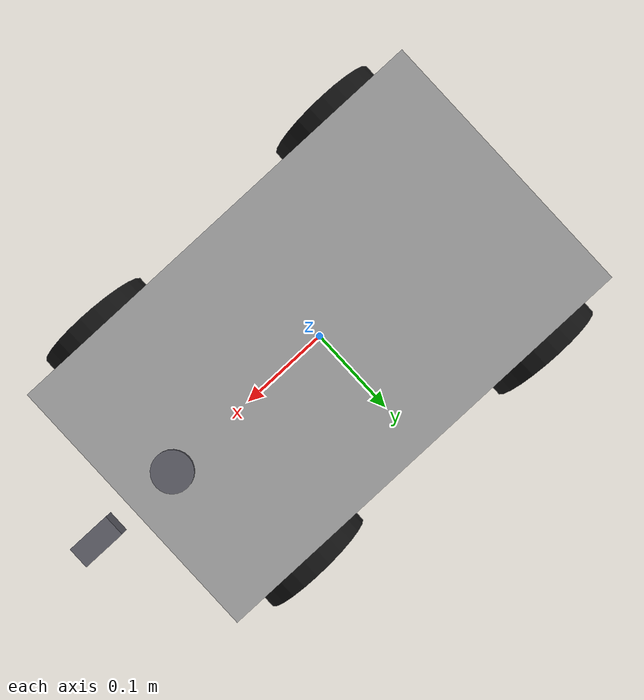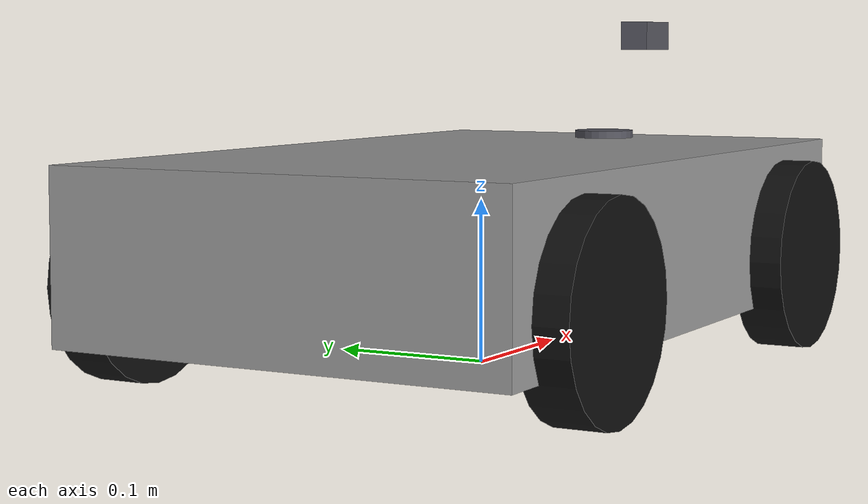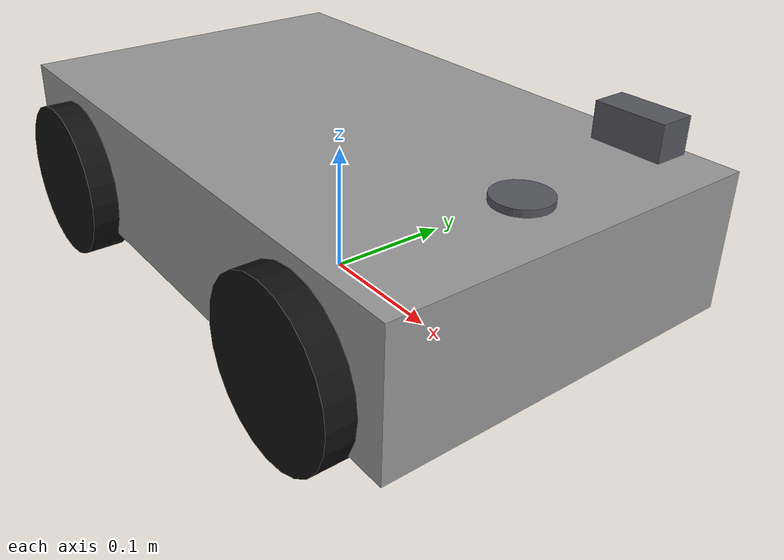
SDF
<?xml version="1.0" ?>
<!-- Generated from rc_car.urdf.xacro sha1=0ac1036ff9e41bfd897f2697a799496b39414fe6; sensors and plugins removed. -->
<sdf version="1.11">
  <model name="rc_car">
    <link name="base_link">
      <inertial>
        <pose>0.0060634920634920651 0 0.082412698412698424 0 0 0</pose>
        <mass>3.149999999999999</mass>
        <inertia>
          <ixx>0.023159663492063491</ixx>
          <ixy>0</ixy>
          <ixz>-0.00187391746031746</ixz>
          <iyy>0.061550850793650802</iyy>
          <iyz>0</iyz>
          <izz>0.077861187301587323</izz>
        </inertia>
      </inertial>
      <collision name="base_link_collision">
        <pose>0 0 0.080000000000000002 0 0 0</pose>
        <geometry>
          <box>
            <size>0.46000000000000002 0.28000000000000003 0.10000000000000001</size>
          </box>
        </geometry>
        <surface>
          <contact>
            <ode>
              <kp>100000</kp>
              <kd>25</kd>
            </ode>
          </contact>
          <friction>
            <ode>
              <mu>1.3999999999999999</mu>
              <mu2>1.3500000000000001</mu2>
            </ode>
          </friction>
        </surface>
      </collision>
      <visual name="base_link_visual">
        <pose>0 0 0.080000000000000002 0 0 0</pose>
        <geometry>
          <box>
            <size>0.46000000000000002 0.28000000000000003 0.10000000000000001</size>
          </box>
        </geometry>
        <material>
          <script>
            <name>Gazebo/Grey</name>
            <uri>file://media/materials/scripts/gazebo.material</uri>
          </script>
          <diffuse>0.337500006 0.337500006 0.37500003 1</diffuse>
          <ambient>0.337500006 0.337500006 0.37500003 1</ambient>
        </material>
      </visual>
      <visual name="base_link_fixed_joint_lump__camera_link_visual_1">
        <pose>0.25 0 0.20000000000000001 0 0 0</pose>
        <geometry>
          <box>
            <size>0.040000000000000001 0.02 0.02</size>
          </box>
        </geometry>
        <material>
          <diffuse>0.337500006 0.337500006 0.37500003 1</diffuse>
          <ambient>0.337500006 0.337500006 0.37500003 1</ambient>
        </material>
      </visual>
      <visual name="base_link_fixed_joint_lump__imu_link_visual_2">
        <pose>0.02 0 0.080000000000000002 0 0 0</pose>
        <geometry>
          <box>
            <size>0.029999999999999999 0.02 0.01</size>
          </box>
        </geometry>
        <material>
          <diffuse>0.337500006 0.337500006 0.37500003 1</diffuse>
          <ambient>0.337500006 0.337500006 0.37500003 1</ambient>
        </material>
      </visual>
      <visual name="base_link_fixed_joint_lump__laser_visual_3">
        <pose>0.17999999999999999 0 0.12 0 0 0</pose>
        <geometry>
          <cylinder>
            <length>0.029999999999999999</length>
            <radius>0.02</radius>
          </cylinder>
        </geometry>
        <material>
          <diffuse>0.337500006 0.337500006 0.37500003 1</diffuse>
          <ambient>0.337500006 0.337500006 0.37500003 1</ambient>
        </material>
      </visual>
    </link>
    <joint name="front_left_wheel_steer_joint" type="revolute">
      <pose relative_to="base_link">0.14999999999999999 0.14499999999999999 0.059999999999999998 0 0 0</pose>
      <parent>base_link</parent>
      <child>front_left_wheel_steer</child>
      <axis>
        <xyz>0 0 1</xyz>
        <limit>
          <lower>-0.3141592654</lower>
          <upper>0.3141592654</upper>
          <effort>10</effort>
          <velocity>3.5</velocity>
        </limit>
        <dynamics>
          <spring_reference>0</spring_reference>
          <spring_stiffness>0</spring_stiffness>
        </dynamics>
      </axis>
    </joint>
    <link name="front_left_wheel_steer">
      <pose relative_to="front_left_wheel_steer_joint">0 0 0 0 0 0</pose>
      <inertial>
        <pose>0 0 0 0 0 0</pose>
        <mass>0.050000000000000003</mass>
        <inertia>
          <ixx>0.00020000000000000001</ixx>
          <ixy>0</ixy>
          <ixz>0</ixz>
          <iyy>0.00020000000000000001</iyy>
          <iyz>0</iyz>
          <izz>0.00020000000000000001</izz>
        </inertia>
      </inertial>
      <collision name="front_left_wheel_steer_collision">
        <pose>0 0 0 0 0 0</pose>
        <geometry>
          <cylinder>
            <length>0.040000000000000001</length>
            <radius>0.01</radius>
          </cylinder>
        </geometry>
      </collision>
      <visual name="front_left_wheel_steer_visual">
        <pose>0 0 0 0 0 0</pose>
        <geometry>
          <cylinder>
            <length>0.040000000000000001</length>
            <radius>0.01</radius>
          </cylinder>
        </geometry>
        <material>
          <diffuse>0.337500006 0.337500006 0.37500003 1</diffuse>
          <ambient>0.337500006 0.337500006 0.37500003 1</ambient>
        </material>
      </visual>
    </link>
    <joint name="front_left_wheel_joint" type="revolute">
      <pose relative_to="front_left_wheel_steer">0 0 0 1.5708 0 0</pose>
      <parent>front_left_wheel_steer</parent>
      <child>front_left_wheel</child>
      <axis>
        <xyz>0 0 -1</xyz>
        <limit>
          <lower>-inf</lower>
          <upper>inf</upper>
        </limit>
        <dynamics>
          <spring_reference>0</spring_reference>
          <spring_stiffness>0</spring_stiffness>
        </dynamics>
      </axis>
    </joint>
    <link name="front_left_wheel">
      <pose relative_to="front_left_wheel_joint">0 0 0 0 0 0</pose>
      <inertial>
        <pose>0 0 0 0 0 0</pose>
        <mass>0.25</mass>
        <inertia>
          <ixx>0.00024374999999999999</ixx>
          <ixy>0</ixy>
          <ixz>0</ixz>
          <iyy>0.00024374999999999999</iyy>
          <iyz>0</iyz>
          <izz>0.00044999999999999999</izz>
        </inertia>
      </inertial>
      <collision name="front_left_wheel_collision">
        <pose>0 0 0 0 0 0</pose>
        <geometry>
          <cylinder>
            <length>0.029999999999999999</length>
            <radius>0.059999999999999998</radius>
          </cylinder>
        </geometry>
        <surface>
          <contact>
            <ode>
              <kp>80000</kp>
              <kd>20</kd>
            </ode>
          </contact>
          <friction>
            <ode>
              <mu>1.2</mu>
              <mu2>1.2</mu2>
            </ode>
          </friction>
        </surface>
      </collision>
      <visual name="front_left_wheel_visual">
        <pose>0 0 0 0 0 0</pose>
        <geometry>
          <cylinder>
            <length>0.029999999999999999</length>
            <radius>0.059999999999999998</radius>
          </cylinder>
        </geometry>
        <material>
          <diffuse>0.0625 0.0625 0.0625 1</diffuse>
          <ambient>0.0625 0.0625 0.0625 1</ambient>
        </material>
      </visual>
    </link>
    <joint name="front_right_wheel_steer_joint" type="revolute">
      <pose relative_to="base_link">0.14999999999999999 -0.14499999999999999 0.059999999999999998 0 0 0</pose>
      <parent>base_link</parent>
      <child>front_right_wheel_steer</child>
      <axis>
        <xyz>0 0 1</xyz>
        <limit>
          <lower>-0.3141592654</lower>
          <upper>0.3141592654</upper>
          <effort>10</effort>
          <velocity>3.5</velocity>
        </limit>
        <dynamics>
          <spring_reference>0</spring_reference>
          <spring_stiffness>0</spring_stiffness>
        </dynamics>
      </axis>
    </joint>
    <link name="front_right_wheel_steer">
      <pose relative_to="front_right_wheel_steer_joint">0 0 0 0 0 0</pose>
      <inertial>
        <pose>0 0 0 0 0 0</pose>
        <mass>0.050000000000000003</mass>
        <inertia>
          <ixx>0.00020000000000000001</ixx>
          <ixy>0</ixy>
          <ixz>0</ixz>
          <iyy>0.00020000000000000001</iyy>
          <iyz>0</iyz>
          <izz>0.00020000000000000001</izz>
        </inertia>
      </inertial>
      <collision name="front_right_wheel_steer_collision">
        <pose>0 0 0 0 0 0</pose>
        <geometry>
          <cylinder>
            <length>0.040000000000000001</length>
            <radius>0.01</radius>
          </cylinder>
        </geometry>
      </collision>
      <visual name="front_right_wheel_steer_visual">
        <pose>0 0 0 0 0 0</pose>
        <geometry>
          <cylinder>
            <length>0.040000000000000001</length>
            <radius>0.01</radius>
          </cylinder>
        </geometry>
        <material>
          <diffuse>0.337500006 0.337500006 0.37500003 1</diffuse>
          <ambient>0.337500006 0.337500006 0.37500003 1</ambient>
        </material>
      </visual>
    </link>
    <joint name="front_right_wheel_joint" type="revolute">
      <pose relative_to="front_right_wheel_steer">0 0 0 1.5708 0 0</pose>
      <parent>front_right_wheel_steer</parent>
      <child>front_right_wheel</child>
      <axis>
        <xyz>0 0 -1</xyz>
        <limit>
          <lower>-inf</lower>
          <upper>inf</upper>
        </limit>
        <dynamics>
          <spring_reference>0</spring_reference>
          <spring_stiffness>0</spring_stiffness>
        </dynamics>
      </axis>
    </joint>
    <link name="front_right_wheel">
      <pose relative_to="front_right_wheel_joint">0 0 0 0 0 0</pose>
      <inertial>
        <pose>0 0 0 0 0 0</pose>
        <mass>0.25</mass>
        <inertia>
          <ixx>0.00024374999999999999</ixx>
          <ixy>0</ixy>
          <ixz>0</ixz>
          <iyy>0.00024374999999999999</iyy>
          <iyz>0</iyz>
          <izz>0.00044999999999999999</izz>
        </inertia>
      </inertial>
      <collision name="front_right_wheel_collision">
        <pose>0 0 0 0 0 0</pose>
        <geometry>
          <cylinder>
            <length>0.029999999999999999</length>
            <radius>0.059999999999999998</radius>
          </cylinder>
        </geometry>
        <surface>
          <contact>
            <ode>
              <kp>80000</kp>
              <kd>20</kd>
            </ode>
          </contact>
          <friction>
            <ode>
              <mu>1.2</mu>
              <mu2>1.2</mu2>
            </ode>
          </friction>
        </surface>
      </collision>
      <visual name="front_right_wheel_visual">
        <pose>0 0 0 0 0 0</pose>
        <geometry>
          <cylinder>
            <length>0.029999999999999999</length>
            <radius>0.059999999999999998</radius>
          </cylinder>
        </geometry>
        <material>
          <diffuse>0.0625 0.0625 0.0625 1</diffuse>
          <ambient>0.0625 0.0625 0.0625 1</ambient>
        </material>
      </visual>
    </link>
    <joint name="rear_left_wheel_joint" type="revolute">
      <pose relative_to="base_link">-0.14999999999999999 0.14499999999999999 0.059999999999999998 1.5708 0 0</pose>
      <parent>base_link</parent>
      <child>rear_left_wheel</child>
      <axis>
        <xyz>0 0 -1</xyz>
        <limit>
          <lower>-inf</lower>
          <upper>inf</upper>
        </limit>
        <dynamics>
          <spring_reference>0</spring_reference>
          <spring_stiffness>0</spring_stiffness>
        </dynamics>
      </axis>
    </joint>
    <link name="rear_left_wheel">
      <pose relative_to="rear_left_wheel_joint">0 0 0 0 0 0</pose>
      <inertial>
        <pose>0 0 0 0 0 0</pose>
        <mass>0.25</mass>
        <inertia>
          <ixx>0.00024374999999999999</ixx>
          <ixy>0</ixy>
          <ixz>0</ixz>
          <iyy>0.00024374999999999999</iyy>
          <iyz>0</iyz>
          <izz>0.00044999999999999999</izz>
        </inertia>
      </inertial>
      <collision name="rear_left_wheel_collision">
        <pose>0 0 0 0 0 0</pose>
        <geometry>
          <cylinder>
            <length>0.029999999999999999</length>
            <radius>0.059999999999999998</radius>
          </cylinder>
        </geometry>
        <surface>
          <contact>
            <ode>
              <kp>80000</kp>
              <kd>20</kd>
            </ode>
          </contact>
          <friction>
            <ode>
              <mu>1.2</mu>
              <mu2>1.2</mu2>
            </ode>
          </friction>
        </surface>
      </collision>
      <visual name="rear_left_wheel_visual">
        <pose>0 0 0 0 0 0</pose>
        <geometry>
          <cylinder>
            <length>0.029999999999999999</length>
            <radius>0.059999999999999998</radius>
          </cylinder>
        </geometry>
        <material>
          <diffuse>0.0625 0.0625 0.0625 1</diffuse>
          <ambient>0.0625 0.0625 0.0625 1</ambient>
        </material>
      </visual>
    </link>
    <joint name="rear_right_wheel_joint" type="revolute">
      <pose relative_to="base_link">-0.14999999999999999 -0.14499999999999999 0.059999999999999998 1.5708 0 0</pose>
      <parent>base_link</parent>
      <child>rear_right_wheel</child>
      <axis>
        <xyz>0 0 -1</xyz>
        <limit>
          <lower>-inf</lower>
          <upper>inf</upper>
        </limit>
        <dynamics>
          <spring_reference>0</spring_reference>
          <spring_stiffness>0</spring_stiffness>
        </dynamics>
      </axis>
    </joint>
    <link name="rear_right_wheel">
      <pose relative_to="rear_right_wheel_joint">0 0 0 0 0 0</pose>
      <inertial>
        <pose>0 0 0 0 0 0</pose>
        <mass>0.25</mass>
        <inertia>
          <ixx>0.00024374999999999999</ixx>
          <ixy>0</ixy>
          <ixz>0</ixz>
          <iyy>0.00024374999999999999</iyy>
          <iyz>0</iyz>
          <izz>0.00044999999999999999</izz>
        </inertia>
      </inertial>
      <collision name="rear_right_wheel_collision">
        <pose>0 0 0 0 0 0</pose>
        <geometry>
          <cylinder>
            <length>0.029999999999999999</length>
            <radius>0.059999999999999998</radius>
          </cylinder>
        </geometry>
        <surface>
          <contact>
            <ode>
              <kp>80000</kp>
              <kd>20</kd>
            </ode>
          </contact>
          <friction>
            <ode>
              <mu>1.2</mu>
              <mu2>1.2</mu2>
            </ode>
          </friction>
        </surface>
      </collision>
      <visual name="rear_right_wheel_visual">
        <pose>0 0 0 0 0 0</pose>
        <geometry>
          <cylinder>
            <length>0.029999999999999999</length>
            <radius>0.059999999999999998</radius>
          </cylinder>
        </geometry>
        <material>
          <diffuse>0.0625 0.0625 0.0625 1</diffuse>
          <ambient>0.0625 0.0625 0.0625 1</ambient>
        </material>
      </visual>
    </link>
    <frame name="camera_joint" attached_to="base_link">
      <pose>0.25 0 0.20000000000000001 0 0 0</pose>
    </frame>
    <frame name="camera_link" attached_to="camera_joint">
      <pose>0 0 0 0 0 0</pose>
    </frame>
    <frame name="imu_joint" attached_to="base_link">
      <pose>0.02 0 0.080000000000000002 0 0 0</pose>
    </frame>
    <frame name="imu_link" attached_to="imu_joint">
      <pose>0 0 0 0 0 0</pose>
    </frame>
    <frame name="lidar_joint" attached_to="base_link">
      <pose>0.17999999999999999 0 0.12 0 0 0</pose>
    </frame>
    <frame name="laser" attached_to="lidar_joint">
      <pose>0 0 0 0 0 0</pose>
    </frame>
    <frame name="rear_axle_joint" attached_to="base_link">
      <pose>-0.14999999999999999 0 0.059999999999999998 0 0 0</pose>
    </frame>
    <frame name="rear_axle" attached_to="rear_axle_joint">
      <pose>0 0 0 0 0 0</pose>
    </frame>
  </model>
</sdf>
